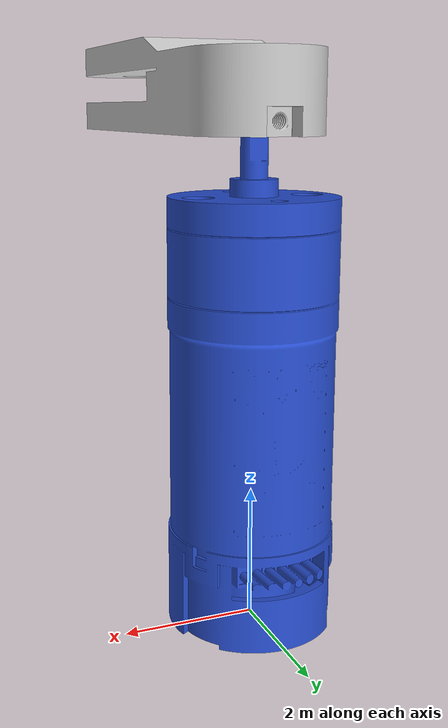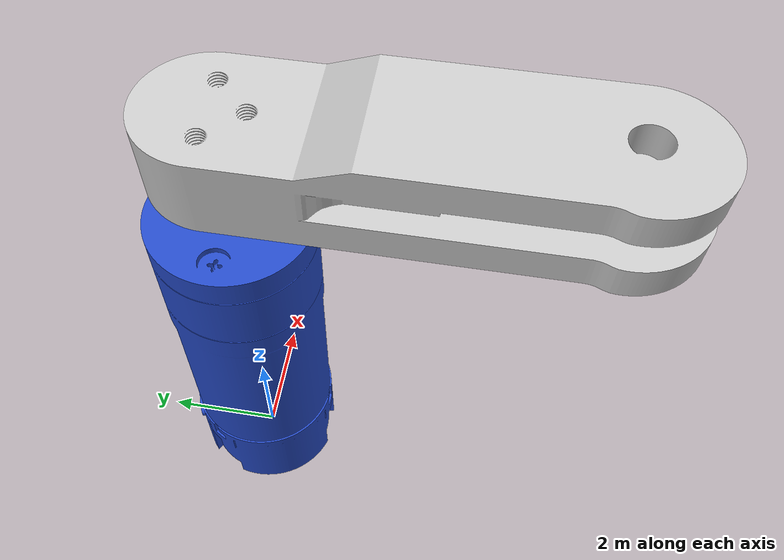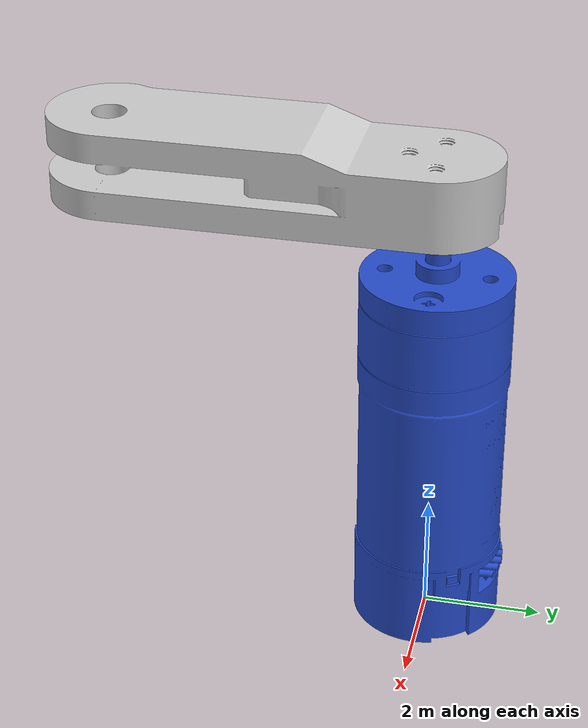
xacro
<?xml version="1.0"?>
<robot xmlns:xacro="http://www.ros.org/wiki/xacro" name="polou4801">

  <material name="orange">
      <color rgba="1 0.3 0.1 1"/>
  </material>

  <link name="world"></link>

  <joint name="world_to_base" type="fixed">
      <parent link="world" />
      <child link="robot_body" />
      <origin  rpy="0 0 0" xyz="0 0 0" />
  </joint>

  <link name="robot_body">
    <visual>
      <origin xyz="0 0 0" rpy="0 0 0" />
      <geometry>
	      <mesh filename="file:///home/jackfrye/Documents/Robotics/MITCheetah/Modelling/ROS2/workspace/src/ros2_polou4801_motor_control/meshes/polou_4801_body_x100.dae"/>
      </geometry>
      <material name="blue"/>
    </visual>
    <collision>
      <geometry>
	      <mesh filename="file:///home/jackfrye/Documents/Robotics/MITCheetah/Modelling/ROS2/workspace/src/ros2_polou4801_motor_control/meshes/polou_4801_body_x100.dae"/>
      </geometry>
    </collision>
    <inertial>
        <origin xyz="0 0 0" rpy="0 0 0"/>
        <mass value="940" />
        <inertia ixx="0.242833" ixy="0.0" ixz="0.0" iyy="0.242833" iyz="0.0" izz="0.29375" />
    </inertial>
  </link>

  <joint name="body_to_rotor" type="revolute">
      <parent link="robot_body" />
      <child link="robot_rotor" />
      <axis xyz="0 0 1" />
      <origin  xyz="0 0 0 " rpy="0 0 0" />
      <limit lower="0" upper="${4*pi}" effort="10" velocity="3"/>
  </joint>

  <link name="robot_rotor">
    <visual>
      <origin xyz="0 0 6.5" rpy="0 0 0" />
      <geometry>
	      <mesh filename="file:///home/jackfrye/Documents/Robotics/MITCheetah/Modelling/ROS2/workspace/src/ros2_polou4801_motor_control/meshes/polou_4801_rotor_x100.dae"/>
      </geometry>
      <material name="blue"/>
    </visual>
    <collision>
      <origin xyz="0 0 6.5" rpy="0 0 0" />
      <geometry>
	      <mesh filename="file:///home/jackfrye/Documents/Robotics/MITCheetah/Modelling/ROS2/workspace/src/ros2_polou4801_motor_control/meshes/polou_4801_rotor_x100.dae"/>
      </geometry>
    </collision>
    <inertial>
        <origin xyz="0 0 6.5" rpy="0 0 0"/>
        <mass value="20" />
        <inertia ixx="0.000016" ixy="0.0" ixz="0.0" iyy="0.000032" iyz="0.0" izz="0.000032" />
    </inertial>
   </link>

  <joint name="rotor_to_shaft" type="fixed">
      <parent link="robot_rotor" />
      <child link="shaftcollar" />
      <origin  rpy="0 0 0" xyz="0 0 0" />
  </joint>

  <link name="shaftcollar">
    <visual>
      <origin xyz="0 0 7.30" rpy="0 0 0" />
      <geometry>
	      <mesh filename="file:///home/jackfrye/Documents/Robotics/MITCheetah/Modelling/ROS2/workspace/src/ros2_polou4801_motor_control/meshes/shaftcollar_x100.dae"/>
      </geometry>
    </visual>
    <collision>
      <origin xyz="0 0 7.30" rpy="0 0 0" />
      <geometry>
	      <mesh filename="file:///home/jackfrye/Documents/Robotics/MITCheetah/Modelling/ROS2/workspace/src/ros2_polou4801_motor_control/meshes/shaftcollar_x100.dae"/>
      </geometry>
    </collision>
    <inertial>
        <origin xyz="0 0 7.30" rpy="0 0 0"/>
        <mass value="40" />
        <inertia ixx="0.000653" ixy="0.0" ixz="0.0" iyy="0.000653" iyz="0.0" izz="0.00008" />
    </inertial>
   </link>

  <joint name="shaft_to_femur" type="fixed">
      <parent link="shaftcollar" />
      <child link="femurleft" />
      <origin  rpy="0 0 0" xyz="0 0 0" />
  </joint>

  <link name="femurleft">
    <visual>
      <origin xyz="0 0 8" rpy="0 0 0" />
      <geometry>
	      <mesh filename="file:///home/jackfrye/Documents/Robotics/MITCheetah/Modelling/ROS2/workspace/src/ros2_polou4801_motor_control/meshes/femurleft_x100.dae"/>
      </geometry>
    </visual>
    <collision>
      <origin xyz="0 0 8" rpy="0 0 0" />
      <geometry>
	      <mesh filename="file:///home/jackfrye/Documents/Robotics/MITCheetah/Modelling/ROS2/workspace/src/ros2_polou4801_motor_control/meshes/femurleft_x100.dae"/>
      </geometry>
    </collision>
    <inertial>
        <origin xyz="0 0 8" rpy="0 0 0"/>
        <mass value="140" />
        <inertia ixx="0.0" ixy="0.0" ixz="0.0" iyy="0.0" iyz="0.0" izz="0.0" />
    </inertial>
   </link>

  <xacro:include filename="gazebo.xacro" />

</robot>
